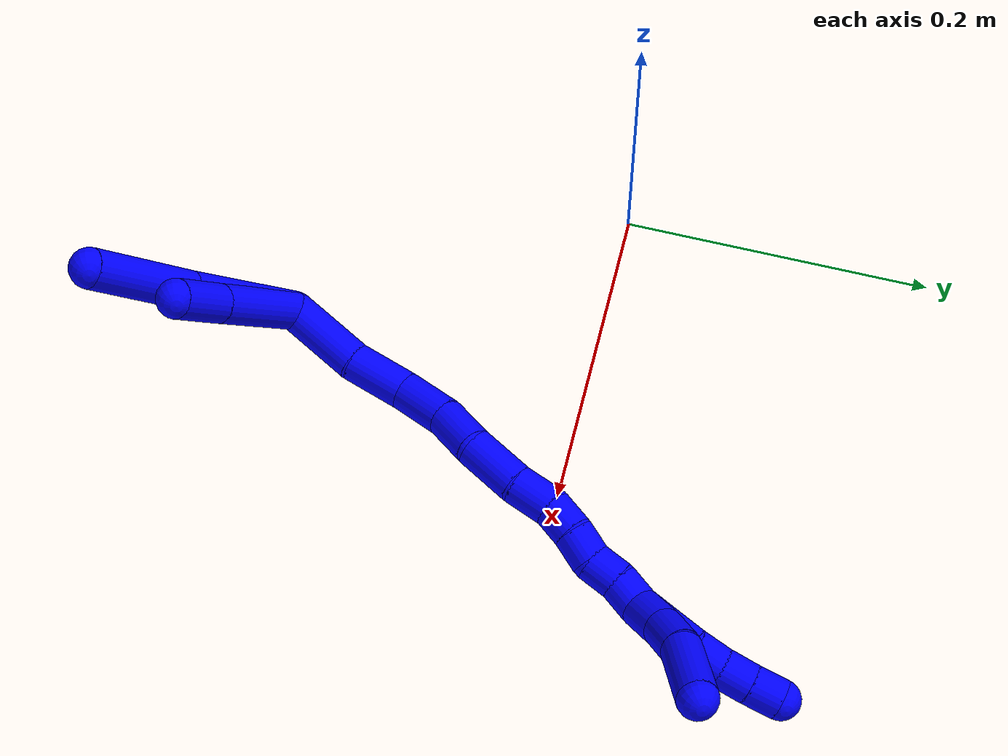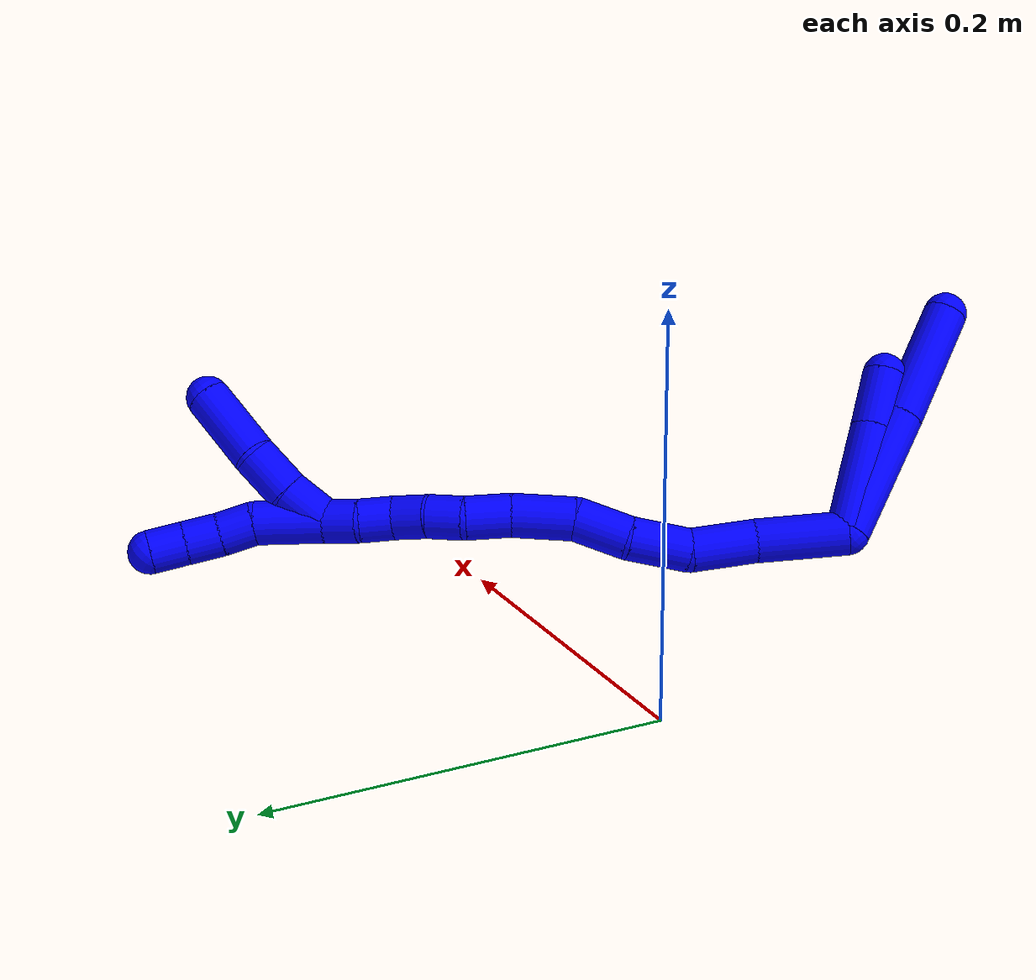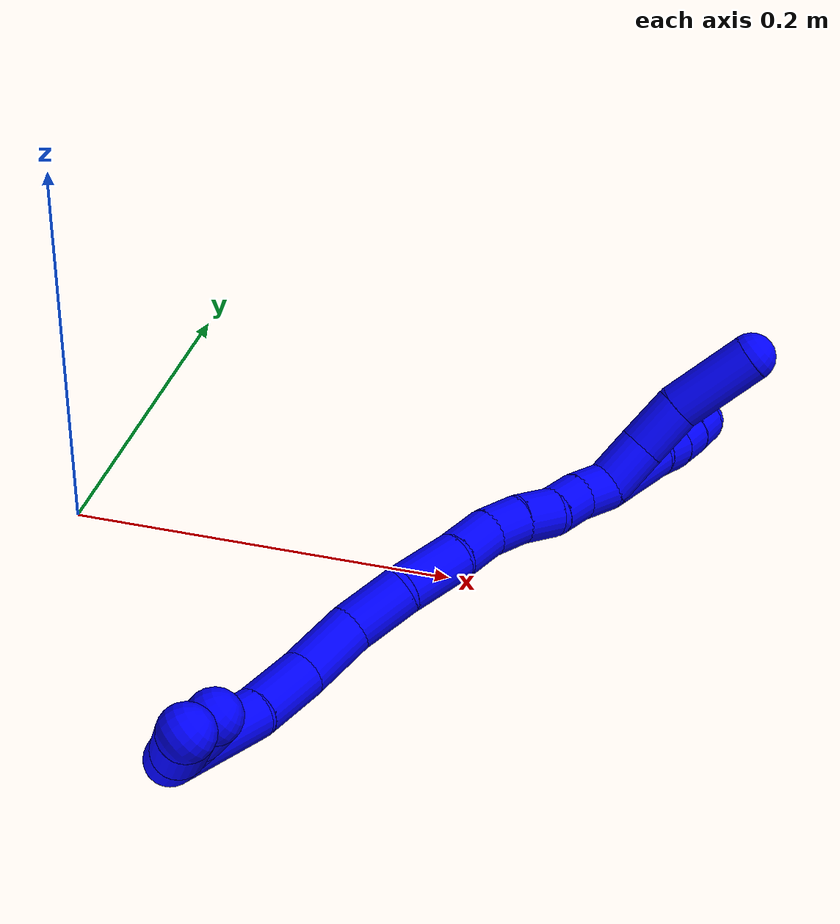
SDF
<sdf version="1.7">
 <world name="default">
  <model name="1">
   <static>0</static>
   <link name="1">
    <collision name="collision-cylinder-e_1_2_8">
     <pose>-0.028312 -0.02252 0.015623 0.964288 -0.801622 -0.436466</pose>
     <geometry><cylinder><radius>0.0125</radius><length>0.078811</length></cylinder></geometry>
     <surface>
      <friction><ode><mu>1.16</mu><mu2>1.16</mu2><slip1>0</slip1><slip2>0</slip2></ode></friction>
      <contact><ode><kp>1e+06</kp><kd>1</kd><max_vel>0</max_vel><min_depth>0.001</min_depth></ode></contact>
     </surface>
    </collision>
    <visual name="visual-cylinder-e_1_2_8">
     <pose>-0.028312 -0.02252 0.015623 0.964288 -0.801622 -0.436466</pose>
     <geometry><cylinder><radius>0.0125</radius><length>0.078811</length></cylinder></geometry>
     <material><ambient>0 0 1 1</ambient></material>
    </visual>
    <collision name="collision-cylinder-e_2_8_6">
     <pose>-0.082785 -0.064034 0.046139 0.905836 -0.825586 -0.419986</pose>
     <geometry><cylinder><radius>0.0125</radius><length>0.071189</length></cylinder></geometry>
     <surface>
      <friction><ode><mu>1.16</mu><mu2>1.16</mu2><slip1>0</slip1><slip2>0</slip2></ode></friction>
      <contact><ode><kp>1e+06</kp><kd>1</kd><max_vel>0</max_vel><min_depth>0.001</min_depth></ode></contact>
     </surface>
    </collision>
    <visual name="visual-cylinder-e_2_8_6">
     <pose>-0.082785 -0.064034 0.046139 0.905836 -0.825586 -0.419986</pose>
     <geometry><cylinder><radius>0.0125</radius><length>0.071189</length></cylinder></geometry>
     <material><ambient>0 0 1 1</ambient></material>
    </visual>
    <collision name="collision-cylinder-e_1_2_9">
     <pose>-0.021203 -0.016487 0.018034 0.740618 -0.714716 -0.287908</pose>
     <geometry><cylinder><radius>0.0125</radius><length>0.064703</length></cylinder></geometry>
     <surface>
      <friction><ode><mu>1.16</mu><mu2>1.16</mu2><slip1>0</slip1><slip2>0</slip2></ode></friction>
      <contact><ode><kp>1e+06</kp><kd>1</kd><max_vel>0</max_vel><min_depth>0.001</min_depth></ode></contact>
     </surface>
    </collision>
    <visual name="visual-cylinder-e_1_2_9">
     <pose>-0.021203 -0.016487 0.018034 0.740618 -0.714716 -0.287908</pose>
     <geometry><cylinder><radius>0.0125</radius><length>0.064703</length></cylinder></geometry>
     <material><ambient>0 0 1 1</ambient></material>
    </visual>
    <collision name="collision-cylinder-e_2_9_5">
     <pose>-0.054084 -0.041598 0.046105 0.709823 -0.723028 -0.278462</pose>
     <geometry><cylinder><radius>0.0125</radius><length>0.035297</length></cylinder></geometry>
     <surface>
      <friction><ode><mu>1.16</mu><mu2>1.16</mu2><slip1>0</slip1><slip2>0</slip2></ode></friction>
      <contact><ode><kp>1e+06</kp><kd>1</kd><max_vel>0</max_vel><min_depth>0.001</min_depth></ode></contact>
     </surface>
    </collision>
    <visual name="visual-cylinder-e_2_9_5">
     <pose>-0.054084 -0.041598 0.046105 0.709823 -0.723028 -0.278462</pose>
     <geometry><cylinder><radius>0.0125</radius><length>0.035297</length></cylinder></geometry>
     <material><ambient>0 0 1 1</ambient></material>
    </visual>
    <collision name="collision-cylinder-e_1_2_10">
     <pose>0.018372 0.010208 0.015402 -0.585309 0.782534 -0.247331</pose>
     <geometry><cylinder><radius>0.0125</radius><length>0.052113</length></cylinder></geometry>
     <surface>
      <friction><ode><mu>1.16</mu><mu2>1.16</mu2><slip1>0</slip1><slip2>0</slip2></ode></friction>
      <contact><ode><kp>1e+06</kp><kd>1</kd><max_vel>0</max_vel><min_depth>0.001</min_depth></ode></contact>
     </surface>
    </collision>
    <visual name="visual-cylinder-e_1_2_10">
     <pose>0.018372 0.010208 0.015402 -0.585309 0.782534 -0.247331</pose>
     <geometry><cylinder><radius>0.0125</radius><length>0.052113</length></cylinder></geometry>
     <material><ambient>0 0 1 1</ambient></material>
    </visual>
    <collision name="collision-cylinder-e_2_10_11">
     <pose>0.049372 0.030859 0.040514 -0.821732 0.72477 -0.327387</pose>
     <geometry><cylinder><radius>0.0125</radius><length>0.038096</length></cylinder></geometry>
     <surface>
      <friction><ode><mu>1.16</mu><mu2>1.16</mu2><slip1>0</slip1><slip2>0</slip2></ode></friction>
      <contact><ode><kp>1e+06</kp><kd>1</kd><max_vel>0</max_vel><min_depth>0.001</min_depth></ode></contact>
     </surface>
    </collision>
    <visual name="visual-cylinder-e_2_10_11">
     <pose>0.049372 0.030859 0.040514 -0.821732 0.72477 -0.327387</pose>
     <geometry><cylinder><radius>0.0125</radius><length>0.038096</length></cylinder></geometry>
     <material><ambient>0 0 1 1</ambient></material>
    </visual>
    <collision name="collision-cylinder-e_3_11_12">
     <pose>0.069877 0.049465 0.063495 -0.551435 0.468121 -0.134711</pose>
     <geometry><cylinder><radius>0.0125</radius><length>0.034914</length></cylinder></geometry>
     <surface>
      <friction><ode><mu>1.16</mu><mu2>1.16</mu2><slip1>0</slip1><slip2>0</slip2></ode></friction>
      <contact><ode><kp>1e+06</kp><kd>1</kd><max_vel>0</max_vel><min_depth>0.001</min_depth></ode></contact>
     </surface>
    </collision>
    <visual name="visual-cylinder-e_3_11_12">
     <pose>0.069877 0.049465 0.063495 -0.551435 0.468121 -0.134711</pose>
     <geometry><cylinder><radius>0.0125</radius><length>0.034914</length></cylinder></geometry>
     <material><ambient>0 0 1 1</ambient></material>
    </visual>
    <collision name="collision-cylinder-e_4_12_13">
     <pose>0.083986 0.061998 0.090509 -0.307936 0.407863 -0.064169</pose>
     <geometry><cylinder><radius>0.0125</radius><length>0.031424</length></cylinder></geometry>
     <surface>
      <friction><ode><mu>1.16</mu><mu2>1.16</mu2><slip1>0</slip1><slip2>0</slip2></ode></friction>
      <contact><ode><kp>1e+06</kp><kd>1</kd><max_vel>0</max_vel><min_depth>0.001</min_depth></ode></contact>
     </surface>
    </collision>
    <visual name="visual-cylinder-e_4_12_13">
     <pose>0.083986 0.061998 0.090509 -0.307936 0.407863 -0.064169</pose>
     <geometry><cylinder><radius>0.0125</radius><length>0.031424</length></cylinder></geometry>
     <material><ambient>0 0 1 1</ambient></material>
    </visual>
    <collision name="collision-cylinder-e_5_13_14">
     <pose>0.101276 0.073218 0.116943 -0.49489 0.654251 -0.17102</pose>
     <geometry><cylinder><radius>0.0125</radius><length>0.036341</length></cylinder></geometry>
     <surface>
      <friction><ode><mu>1.16</mu><mu2>1.16</mu2><slip1>0</slip1><slip2>0</slip2></ode></friction>
      <contact><ode><kp>1e+06</kp><kd>1</kd><max_vel>0</max_vel><min_depth>0.001</min_depth></ode></contact>
     </surface>
    </collision>
    <visual name="visual-cylinder-e_5_13_14">
     <pose>0.101276 0.073218 0.116943 -0.49489 0.654251 -0.17102</pose>
     <geometry><cylinder><radius>0.0125</radius><length>0.036341</length></cylinder></geometry>
     <material><ambient>0 0 1 1</ambient></material>
    </visual>
    <collision name="collision-cylinder-e_6_14_15">
     <pose>0.120743 0.086557 0.137237 -0.706511 0.699175 -0.267242</pose>
     <geometry><cylinder><radius>0.0125</radius><length>0.02613</length></cylinder></geometry>
     <surface>
      <friction><ode><mu>1.16</mu><mu2>1.16</mu2><slip1>0</slip1><slip2>0</slip2></ode></friction>
      <contact><ode><kp>1e+06</kp><kd>1</kd><max_vel>0</max_vel><min_depth>0.001</min_depth></ode></contact>
     </surface>
    </collision>
    <visual name="visual-cylinder-e_6_14_15">
     <pose>0.120743 0.086557 0.137237 -0.706511 0.699175 -0.267242</pose>
     <geometry><cylinder><radius>0.0125</radius><length>0.02613</length></cylinder></geometry>
     <material><ambient>0 0 1 1</ambient></material>
    </visual>
    <collision name="collision-cylinder-e_7_15_16">
     <pose>0.135917 0.095504 0.152139 -0.324605 0.721012 -0.123299</pose>
     <geometry><cylinder><radius>0.0125</radius><length>0.020496</length></cylinder></geometry>
     <surface>
      <friction><ode><mu>1.16</mu><mu2>1.16</mu2><slip1>0</slip1><slip2>0</slip2></ode></friction>
      <contact><ode><kp>1e+06</kp><kd>1</kd><max_vel>0</max_vel><min_depth>0.001</min_depth></ode></contact>
     </surface>
    </collision>
    <visual name="visual-cylinder-e_7_15_16">
     <pose>0.135917 0.095504 0.152139 -0.324605 0.721012 -0.123299</pose>
     <geometry><cylinder><radius>0.0125</radius><length>0.020496</length></cylinder></geometry>
     <material><ambient>0 0 1 1</ambient></material>
    </visual>
    <collision name="collision-cylinder-e_8_16_17">
     <pose>0.150294 0.099149 0.166049 -0.17802 0.847483 -0.080469</pose>
     <geometry><cylinder><radius>0.0125</radius><length>0.020309</length></cylinder></geometry>
     <surface>
      <friction><ode><mu>1.16</mu><mu2>1.16</mu2><slip1>0</slip1><slip2>0</slip2></ode></friction>
      <contact><ode><kp>1e+06</kp><kd>1</kd><max_vel>0</max_vel><min_depth>0.001</min_depth></ode></contact>
     </surface>
    </collision>
    <visual name="visual-cylinder-e_8_16_17">
     <pose>0.150294 0.099149 0.166049 -0.17802 0.847483 -0.080469</pose>
     <geometry><cylinder><radius>0.0125</radius><length>0.020309</length></cylinder></geometry>
     <material><ambient>0 0 1 1</ambient></material>
    </visual>
    <collision name="collision-cylinder-e_9_17_18">
     <pose>0.164819 0.104796 0.17849 -0.65302 0.755795 -0.267254</pose>
     <geometry><cylinder><radius>0.0125</radius><length>0.020159</length></cylinder></geometry>
     <surface>
      <friction><ode><mu>1.16</mu><mu2>1.16</mu2><slip1>0</slip1><slip2>0</slip2></ode></friction>
      <contact><ode><kp>1e+06</kp><kd>1</kd><max_vel>0</max_vel><min_depth>0.001</min_depth></ode></contact>
     </surface>
    </collision>
    <visual name="visual-cylinder-e_9_17_18">
     <pose>0.164819 0.104796 0.17849 -0.65302 0.755795 -0.267254</pose>
     <geometry><cylinder><radius>0.0125</radius><length>0.020159</length></cylinder></geometry>
     <material><ambient>0 0 1 1</ambient></material>
    </visual>
    <collision name="collision-cylinder-e_10_18_1">
     <pose>0.178744 0.111599 0.191061 -0.334719 0.776246 -0.137927</pose>
     <geometry><cylinder><radius>0.0125</radius><length>0.020017</length></cylinder></geometry>
     <surface>
      <friction><ode><mu>1.16</mu><mu2>1.16</mu2><slip1>0</slip1><slip2>0</slip2></ode></friction>
      <contact><ode><kp>1e+06</kp><kd>1</kd><max_vel>0</max_vel><min_depth>0.001</min_depth></ode></contact>
     </surface>
    </collision>
    <visual name="visual-cylinder-e_10_18_1">
     <pose>0.178744 0.111599 0.191061 -0.334719 0.776246 -0.137927</pose>
     <geometry><cylinder><radius>0.0125</radius><length>0.020017</length></cylinder></geometry>
     <material><ambient>0 0 1 1</ambient></material>
    </visual>
    <collision name="collision-cylinder-e_1_1_19">
     <pose>0.198618 0.122484 0.210267 -0.600805 0.705332 -0.227048</pose>
     <geometry><cylinder><radius>0.0125</radius><length>0.039679</length></cylinder></geometry>
     <surface>
      <friction><ode><mu>1.16</mu><mu2>1.16</mu2><slip1>0</slip1><slip2>0</slip2></ode></friction>
      <contact><ode><kp>1e+06</kp><kd>1</kd><max_vel>0</max_vel><min_depth>0.001</min_depth></ode></contact>
     </surface>
    </collision>
    <visual name="visual-cylinder-e_1_1_19">
     <pose>0.198618 0.122484 0.210267 -0.600805 0.705332 -0.227048</pose>
     <geometry><cylinder><radius>0.0125</radius><length>0.039679</length></cylinder></geometry>
     <material><ambient>0 0 1 1</ambient></material>
    </visual>
    <collision name="collision-cylinder-e_2_19_20">
     <pose>0.219473 0.135772 0.226431 -0.908417 0.925155 -0.477657</pose>
     <geometry><cylinder><radius>0.0125</radius><length>0.020016</length></cylinder></geometry>
     <surface>
      <friction><ode><mu>1.16</mu><mu2>1.16</mu2><slip1>0</slip1><slip2>0</slip2></ode></friction>
      <contact><ode><kp>1e+06</kp><kd>1</kd><max_vel>0</max_vel><min_depth>0.001</min_depth></ode></contact>
     </surface>
    </collision>
    <visual name="visual-cylinder-e_2_19_20">
     <pose>0.219473 0.135772 0.226431 -0.908417 0.925155 -0.477657</pose>
     <geometry><cylinder><radius>0.0125</radius><length>0.020016</length></cylinder></geometry>
     <material><ambient>0 0 1 1</ambient></material>
    </visual>
    <collision name="collision-cylinder-e_3_20_21">
     <pose>0.234685 0.146109 0.234338 -0.925874 0.801265 -0.416653</pose>
     <geometry><cylinder><radius>0.0125</radius><length>0.020102</length></cylinder></geometry>
     <surface>
      <friction><ode><mu>1.16</mu><mu2>1.16</mu2><slip1>0</slip1><slip2>0</slip2></ode></friction>
      <contact><ode><kp>1e+06</kp><kd>1</kd><max_vel>0</max_vel><min_depth>0.001</min_depth></ode></contact>
     </surface>
    </collision>
    <visual name="visual-cylinder-e_3_20_21">
     <pose>0.234685 0.146109 0.234338 -0.925874 0.801265 -0.416653</pose>
     <geometry><cylinder><radius>0.0125</radius><length>0.020102</length></cylinder></geometry>
     <material><ambient>0 0 1 1</ambient></material>
    </visual>
    <collision name="collision-cylinder-e_4_21_4">
     <pose>0.248937 0.157719 0.242585 -0.979493 0.770037 -0.425502</pose>
     <geometry><cylinder><radius>0.0125</radius><length>0.020203</length></cylinder></geometry>
     <surface>
      <friction><ode><mu>1.16</mu><mu2>1.16</mu2><slip1>0</slip1><slip2>0</slip2></ode></friction>
      <contact><ode><kp>1e+06</kp><kd>1</kd><max_vel>0</max_vel><min_depth>0.001</min_depth></ode></contact>
     </surface>
    </collision>
    <visual name="visual-cylinder-e_4_21_4">
     <pose>0.248937 0.157719 0.242585 -0.979493 0.770037 -0.425502</pose>
     <geometry><cylinder><radius>0.0125</radius><length>0.020203</length></cylinder></geometry>
     <material><ambient>0 0 1 1</ambient></material>
    </visual>
    <collision name="collision-cylinder-e_1_1_22">
     <pose>0.186724 0.11761 0.210725 -0.276477 0.07194 -0.010013</pose>
     <geometry><cylinder><radius>0.0125</radius><length>0.026926</length></cylinder></geometry>
     <surface>
      <friction><ode><mu>1.16</mu><mu2>1.16</mu2><slip1>0</slip1><slip2>0</slip2></ode></friction>
      <contact><ode><kp>1e+06</kp><kd>1</kd><max_vel>0</max_vel><min_depth>0.001</min_depth></ode></contact>
     </surface>
    </collision>
    <visual name="visual-cylinder-e_1_1_22">
     <pose>0.186724 0.11761 0.210725 -0.276477 0.07194 -0.010013</pose>
     <geometry><cylinder><radius>0.0125</radius><length>0.026926</length></cylinder></geometry>
     <material><ambient>0 0 1 1</ambient></material>
    </visual>
    <collision name="collision-cylinder-e_2_22_23">
     <pose>0.187022 0.123495 0.237296 -0.161113 -0.048368 0.003906</pose>
     <geometry><cylinder><radius>0.0125</radius><length>0.027697</length></cylinder></geometry>
     <surface>
      <friction><ode><mu>1.16</mu><mu2>1.16</mu2><slip1>0</slip1><slip2>0</slip2></ode></friction>
      <contact><ode><kp>1e+06</kp><kd>1</kd><max_vel>0</max_vel><min_depth>0.001</min_depth></ode></contact>
     </surface>
    </collision>
    <visual name="visual-cylinder-e_2_22_23">
     <pose>0.187022 0.123495 0.237296 -0.161113 -0.048368 0.003906</pose>
     <geometry><cylinder><radius>0.0125</radius><length>0.027697</length></cylinder></geometry>
     <material><ambient>0 0 1 1</ambient></material>
    </visual>
    <collision name="collision-cylinder-e_3_23_3">
     <pose>0.186526 0.123926 0.273566 0.078864 0.007676 0.000303</pose>
     <geometry><cylinder><radius>0.0125</radius><length>0.045377</length></cylinder></geometry>
     <surface>
      <friction><ode><mu>1.16</mu><mu2>1.16</mu2><slip1>0</slip1><slip2>0</slip2></ode></friction>
      <contact><ode><kp>1e+06</kp><kd>1</kd><max_vel>0</max_vel><min_depth>0.001</min_depth></ode></contact>
     </surface>
    </collision>
    <visual name="visual-cylinder-e_3_23_3">
     <pose>0.186526 0.123926 0.273566 0.078864 0.007676 0.000303</pose>
     <geometry><cylinder><radius>0.0125</radius><length>0.045377</length></cylinder></geometry>
     <material><ambient>0 0 1 1</ambient></material>
    </visual>
    <collision name="collision-sphere-3">
     <pose>0.186701 0.122139 0.296184 0 -0 0</pose>
     <geometry><sphere><radius>0.0125</radius></sphere></geometry>
     <surface>
      <friction><ode><mu>1.16</mu><mu2>1.16</mu2><slip1>0</slip1><slip2>0</slip2></ode></friction>
      <contact><ode><kp>1e+06</kp><kd>1</kd><max_vel>0</max_vel><min_depth>0.001</min_depth></ode></contact>
     </surface>
    </collision>
    <visual name="visual-sphere-3">
     <pose>0.186701 0.122139 0.296184 0 -0 0</pose>
     <geometry><sphere><radius>0.0125</radius></sphere></geometry>
     <material><ambient>0 0 1 1</ambient></material>
    </visual>
    <collision name="collision-sphere-23">
     <pose>0.186352 0.125714 0.250949 0 -0 0</pose>
     <geometry><sphere><radius>0.0125</radius></sphere></geometry>
     <surface>
      <friction><ode><mu>1.16</mu><mu2>1.16</mu2><slip1>0</slip1><slip2>0</slip2></ode></friction>
      <contact><ode><kp>1e+06</kp><kd>1</kd><max_vel>0</max_vel><min_depth>0.001</min_depth></ode></contact>
     </surface>
    </collision>
    <visual name="visual-sphere-23">
     <pose>0.186352 0.125714 0.250949 0 -0 0</pose>
     <geometry><sphere><radius>0.0125</radius></sphere></geometry>
     <material><ambient>0 0 1 1</ambient></material>
    </visual>
    <collision name="collision-sphere-22">
     <pose>0.187691 0.121276 0.223643 0 -0 0</pose>
     <geometry><sphere><radius>0.0125</radius></sphere></geometry>
     <surface>
      <friction><ode><mu>1.16</mu><mu2>1.16</mu2><slip1>0</slip1><slip2>0</slip2></ode></friction>
      <contact><ode><kp>1e+06</kp><kd>1</kd><max_vel>0</max_vel><min_depth>0.001</min_depth></ode></contact>
     </surface>
    </collision>
    <visual name="visual-sphere-22">
     <pose>0.187691 0.121276 0.223643 0 -0 0</pose>
     <geometry><sphere><radius>0.0125</radius></sphere></geometry>
     <material><ambient>0 0 1 1</ambient></material>
    </visual>
    <collision name="collision-sphere-4">
     <pose>0.255969 0.163739 0.246627 0 -0 0</pose>
     <geometry><sphere><radius>0.0125</radius></sphere></geometry>
     <surface>
      <friction><ode><mu>1.16</mu><mu2>1.16</mu2><slip1>0</slip1><slip2>0</slip2></ode></friction>
      <contact><ode><kp>1e+06</kp><kd>1</kd><max_vel>0</max_vel><min_depth>0.001</min_depth></ode></contact>
     </surface>
    </collision>
    <visual name="visual-sphere-4">
     <pose>0.255969 0.163739 0.246627 0 -0 0</pose>
     <geometry><sphere><radius>0.0125</radius></sphere></geometry>
     <material><ambient>0 0 1 1</ambient></material>
    </visual>
    <collision name="collision-sphere-21">
     <pose>0.241905 0.151698 0.238542 0 -0 0</pose>
     <geometry><sphere><radius>0.0125</radius></sphere></geometry>
     <surface>
      <friction><ode><mu>1.16</mu><mu2>1.16</mu2><slip1>0</slip1><slip2>0</slip2></ode></friction>
      <contact><ode><kp>1e+06</kp><kd>1</kd><max_vel>0</max_vel><min_depth>0.001</min_depth></ode></contact>
     </surface>
    </collision>
    <visual name="visual-sphere-21">
     <pose>0.241905 0.151698 0.238542 0 -0 0</pose>
     <geometry><sphere><radius>0.0125</radius></sphere></geometry>
     <material><ambient>0 0 1 1</ambient></material>
    </visual>
    <collision name="collision-sphere-20">
     <pose>0.227466 0.14052 0.230134 0 -0 0</pose>
     <geometry><sphere><radius>0.0125</radius></sphere></geometry>
     <surface>
      <friction><ode><mu>1.16</mu><mu2>1.16</mu2><slip1>0</slip1><slip2>0</slip2></ode></friction>
      <contact><ode><kp>1e+06</kp><kd>1</kd><max_vel>0</max_vel><min_depth>0.001</min_depth></ode></contact>
     </surface>
    </collision>
    <visual name="visual-sphere-20">
     <pose>0.227466 0.14052 0.230134 0 -0 0</pose>
     <geometry><sphere><radius>0.0125</radius></sphere></geometry>
     <material><ambient>0 0 1 1</ambient></material>
    </visual>
    <collision name="collision-sphere-10">
     <pose>0.036744 0.020416 0.030803 0 -0 0</pose>
     <geometry><sphere><radius>0.0125</radius></sphere></geometry>
     <surface>
      <friction><ode><mu>1.16</mu><mu2>1.16</mu2><slip1>0</slip1><slip2>0</slip2></ode></friction>
      <contact><ode><kp>1e+06</kp><kd>1</kd><max_vel>0</max_vel><min_depth>0.001</min_depth></ode></contact>
     </surface>
    </collision>
    <visual name="visual-sphere-10">
     <pose>0.036744 0.020416 0.030803 0 -0 0</pose>
     <geometry><sphere><radius>0.0125</radius></sphere></geometry>
     <material><ambient>0 0 1 1</ambient></material>
    </visual>
    <collision name="collision-sphere-5">
     <pose>-0.065761 -0.050222 0.056141 0 -0 0</pose>
     <geometry><sphere><radius>0.0125</radius></sphere></geometry>
     <surface>
      <friction><ode><mu>1.16</mu><mu2>1.16</mu2><slip1>0</slip1><slip2>0</slip2></ode></friction>
      <contact><ode><kp>1e+06</kp><kd>1</kd><max_vel>0</max_vel><min_depth>0.001</min_depth></ode></contact>
     </surface>
    </collision>
    <visual name="visual-sphere-5">
     <pose>-0.065761 -0.050222 0.056141 0 -0 0</pose>
     <geometry><sphere><radius>0.0125</radius></sphere></geometry>
     <material><ambient>0 0 1 1</ambient></material>
    </visual>
    <collision name="collision-sphere-6">
     <pose>-0.108945 -0.083029 0.061033 0 -0 0</pose>
     <geometry><sphere><radius>0.0125</radius></sphere></geometry>
     <surface>
      <friction><ode><mu>1.16</mu><mu2>1.16</mu2><slip1>0</slip1><slip2>0</slip2></ode></friction>
      <contact><ode><kp>1e+06</kp><kd>1</kd><max_vel>0</max_vel><min_depth>0.001</min_depth></ode></contact>
     </surface>
    </collision>
    <visual name="visual-sphere-6">
     <pose>-0.108945 -0.083029 0.061033 0 -0 0</pose>
     <geometry><sphere><radius>0.0125</radius></sphere></geometry>
     <material><ambient>0 0 1 1</ambient></material>
    </visual>
    <collision name="collision-sphere-9">
     <pose>-0.042407 -0.032974 0.036068 0 -0 0</pose>
     <geometry><sphere><radius>0.0125</radius></sphere></geometry>
     <surface>
      <friction><ode><mu>1.16</mu><mu2>1.16</mu2><slip1>0</slip1><slip2>0</slip2></ode></friction>
      <contact><ode><kp>1e+06</kp><kd>1</kd><max_vel>0</max_vel><min_depth>0.001</min_depth></ode></contact>
     </surface>
    </collision>
    <visual name="visual-sphere-9">
     <pose>-0.042407 -0.032974 0.036068 0 -0 0</pose>
     <geometry><sphere><radius>0.0125</radius></sphere></geometry>
     <material><ambient>0 0 1 1</ambient></material>
    </visual>
    <collision name="collision-sphere-2">
     <geometry><sphere><radius>0.0125</radius></sphere></geometry>
     <surface>
      <friction><ode><mu>1.16</mu><mu2>1.16</mu2><slip1>0</slip1><slip2>0</slip2></ode></friction>
      <contact><ode><kp>1e+06</kp><kd>1</kd><max_vel>0</max_vel><min_depth>0.001</min_depth></ode></contact>
     </surface>
    </collision>
    <visual name="visual-sphere-2">
     <geometry><sphere><radius>0.0125</radius></sphere></geometry>
     <material><ambient>0 0 1 1</ambient></material>
    </visual>
    <collision name="collision-sphere-19">
     <pose>0.211479 0.131024 0.222727 0 -0 0</pose>
     <geometry><sphere><radius>0.0125</radius></sphere></geometry>
     <surface>
      <friction><ode><mu>1.16</mu><mu2>1.16</mu2><slip1>0</slip1><slip2>0</slip2></ode></friction>
      <contact><ode><kp>1e+06</kp><kd>1</kd><max_vel>0</max_vel><min_depth>0.001</min_depth></ode></contact>
     </surface>
    </collision>
    <visual name="visual-sphere-19">
     <pose>0.211479 0.131024 0.222727 0 -0 0</pose>
     <geometry><sphere><radius>0.0125</radius></sphere></geometry>
     <material><ambient>0 0 1 1</ambient></material>
    </visual>
    <collision name="collision-sphere-8">
     <pose>-0.056625 -0.04504 0.031245 0 -0 0</pose>
     <geometry><sphere><radius>0.0125</radius></sphere></geometry>
     <surface>
      <friction><ode><mu>1.16</mu><mu2>1.16</mu2><slip1>0</slip1><slip2>0</slip2></ode></friction>
      <contact><ode><kp>1e+06</kp><kd>1</kd><max_vel>0</max_vel><min_depth>0.001</min_depth></ode></contact>
     </surface>
    </collision>
    <visual name="visual-sphere-8">
     <pose>-0.056625 -0.04504 0.031245 0 -0 0</pose>
     <geometry><sphere><radius>0.0125</radius></sphere></geometry>
     <material><ambient>0 0 1 1</ambient></material>
    </visual>
    <collision name="collision-sphere-11">
     <pose>0.062 0.041303 0.050225 0 -0 0</pose>
     <geometry><sphere><radius>0.0125</radius></sphere></geometry>
     <surface>
      <friction><ode><mu>1.16</mu><mu2>1.16</mu2><slip1>0</slip1><slip2>0</slip2></ode></friction>
      <contact><ode><kp>1e+06</kp><kd>1</kd><max_vel>0</max_vel><min_depth>0.001</min_depth></ode></contact>
     </surface>
    </collision>
    <visual name="visual-sphere-11">
     <pose>0.062 0.041303 0.050225 0 -0 0</pose>
     <geometry><sphere><radius>0.0125</radius></sphere></geometry>
     <material><ambient>0 0 1 1</ambient></material>
    </visual>
    <collision name="collision-sphere-12">
     <pose>0.077754 0.057627 0.076764 0 -0 0</pose>
     <geometry><sphere><radius>0.0125</radius></sphere></geometry>
     <surface>
      <friction><ode><mu>1.16</mu><mu2>1.16</mu2><slip1>0</slip1><slip2>0</slip2></ode></friction>
      <contact><ode><kp>1e+06</kp><kd>1</kd><max_vel>0</max_vel><min_depth>0.001</min_depth></ode></contact>
     </surface>
    </collision>
    <visual name="visual-sphere-12">
     <pose>0.077754 0.057627 0.076764 0 -0 0</pose>
     <geometry><sphere><radius>0.0125</radius></sphere></geometry>
     <material><ambient>0 0 1 1</ambient></material>
    </visual>
    <collision name="collision-sphere-13">
     <pose>0.090218 0.06637 0.104254 0 -0 0</pose>
     <geometry><sphere><radius>0.0125</radius></sphere></geometry>
     <surface>
      <friction><ode><mu>1.16</mu><mu2>1.16</mu2><slip1>0</slip1><slip2>0</slip2></ode></friction>
      <contact><ode><kp>1e+06</kp><kd>1</kd><max_vel>0</max_vel><min_depth>0.001</min_depth></ode></contact>
     </surface>
    </collision>
    <visual name="visual-sphere-13">
     <pose>0.090218 0.06637 0.104254 0 -0 0</pose>
     <geometry><sphere><radius>0.0125</radius></sphere></geometry>
     <material><ambient>0 0 1 1</ambient></material>
    </visual>
    <collision name="collision-sphere-14">
     <pose>0.112334 0.080065 0.129631 0 -0 0</pose>
     <geometry><sphere><radius>0.0125</radius></sphere></geometry>
     <surface>
      <friction><ode><mu>1.16</mu><mu2>1.16</mu2><slip1>0</slip1><slip2>0</slip2></ode></friction>
      <contact><ode><kp>1e+06</kp><kd>1</kd><max_vel>0</max_vel><min_depth>0.001</min_depth></ode></contact>
     </surface>
    </collision>
    <visual name="visual-sphere-14">
     <pose>0.112334 0.080065 0.129631 0 -0 0</pose>
     <geometry><sphere><radius>0.0125</radius></sphere></geometry>
     <material><ambient>0 0 1 1</ambient></material>
    </visual>
    <collision name="collision-sphere-15">
     <pose>0.129151 0.093049 0.144843 0 -0 0</pose>
     <geometry><sphere><radius>0.0125</radius></sphere></geometry>
     <surface>
      <friction><ode><mu>1.16</mu><mu2>1.16</mu2><slip1>0</slip1><slip2>0</slip2></ode></friction>
      <contact><ode><kp>1e+06</kp><kd>1</kd><max_vel>0</max_vel><min_depth>0.001</min_depth></ode></contact>
     </surface>
    </collision>
    <visual name="visual-sphere-15">
     <pose>0.129151 0.093049 0.144843 0 -0 0</pose>
     <geometry><sphere><radius>0.0125</radius></sphere></geometry>
     <material><ambient>0 0 1 1</ambient></material>
    </visual>
    <collision name="collision-sphere-16">
     <pose>0.142682 0.097959 0.159435 0 -0 0</pose>
     <geometry><sphere><radius>0.0125</radius></sphere></geometry>
     <surface>
      <friction><ode><mu>1.16</mu><mu2>1.16</mu2><slip1>0</slip1><slip2>0</slip2></ode></friction>
      <contact><ode><kp>1e+06</kp><kd>1</kd><max_vel>0</max_vel><min_depth>0.001</min_depth></ode></contact>
     </surface>
    </collision>
    <visual name="visual-sphere-16">
     <pose>0.142682 0.097959 0.159435 0 -0 0</pose>
     <geometry><sphere><radius>0.0125</radius></sphere></geometry>
     <material><ambient>0 0 1 1</ambient></material>
    </visual>
    <collision name="collision-sphere-17">
     <pose>0.157906 0.100339 0.172664 0 -0 0</pose>
     <geometry><sphere><radius>0.0125</radius></sphere></geometry>
     <surface>
      <friction><ode><mu>1.16</mu><mu2>1.16</mu2><slip1>0</slip1><slip2>0</slip2></ode></friction>
      <contact><ode><kp>1e+06</kp><kd>1</kd><max_vel>0</max_vel><min_depth>0.001</min_depth></ode></contact>
     </surface>
    </collision>
    <visual name="visual-sphere-17">
     <pose>0.157906 0.100339 0.172664 0 -0 0</pose>
     <geometry><sphere><radius>0.0125</radius></sphere></geometry>
     <material><ambient>0 0 1 1</ambient></material>
    </visual>
    <collision name="collision-sphere-18">
     <pose>0.171732 0.109253 0.184316 0 -0 0</pose>
     <geometry><sphere><radius>0.0125</radius></sphere></geometry>
     <surface>
      <friction><ode><mu>1.16</mu><mu2>1.16</mu2><slip1>0</slip1><slip2>0</slip2></ode></friction>
      <contact><ode><kp>1e+06</kp><kd>1</kd><max_vel>0</max_vel><min_depth>0.001</min_depth></ode></contact>
     </surface>
    </collision>
    <visual name="visual-sphere-18">
     <pose>0.171732 0.109253 0.184316 0 -0 0</pose>
     <geometry><sphere><radius>0.0125</radius></sphere></geometry>
     <material><ambient>0 0 1 1</ambient></material>
    </visual>
    <collision name="collision-sphere-1">
     <pose>0.185756 0.113945 0.197806 0 -0 0</pose>
     <geometry><sphere><radius>0.0125</radius></sphere></geometry>
     <surface>
      <friction><ode><mu>1.16</mu><mu2>1.16</mu2><slip1>0</slip1><slip2>0</slip2></ode></friction>
      <contact><ode><kp>1e+06</kp><kd>1</kd><max_vel>0</max_vel><min_depth>0.001</min_depth></ode></contact>
     </surface>
    </collision>
    <visual name="visual-sphere-1">
     <pose>0.185756 0.113945 0.197806 0 -0 0</pose>
     <geometry><sphere><radius>0.0125</radius></sphere></geometry>
     <material><ambient>0 0 1 1</ambient></material>
    </visual>
    <inertial>
     <pose>0.075704 0.047555 0.111484 0 -0 0</pose>
     <mass>0.75</mass>
     <inertia>
      <ixx>9.4e-05</ixx>
      <ixy>0</ixy>
      <ixz>0</ixz>
      <iyy>0.000113</iyy>
      <iyz>0</iyz>
      <izz>0.000112</izz>
     </inertia>
    </inertial>
   </link>
   <pose>0.124062 -0.191846 0.020022 0.313015 0.861526 0.908189</pose>
  </model>
 </world>
</sdf>
